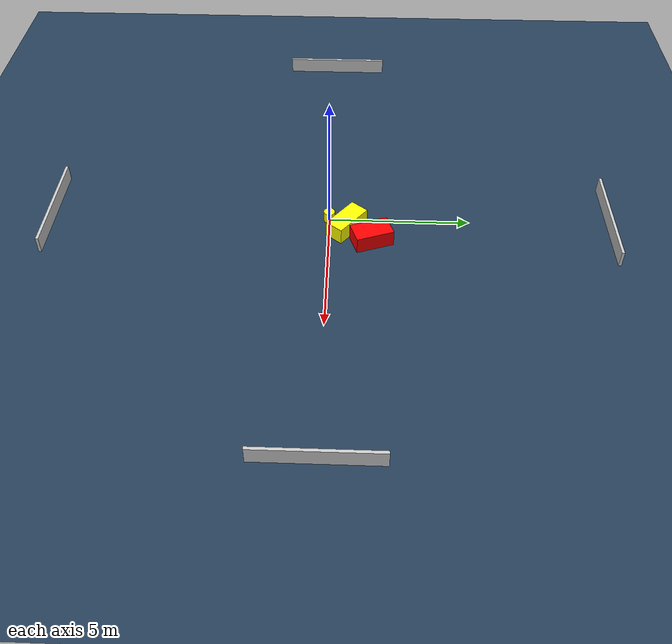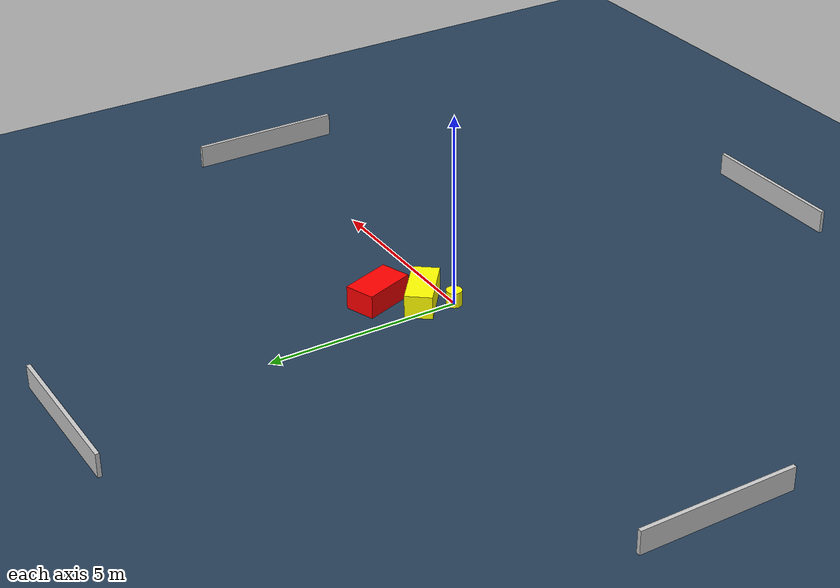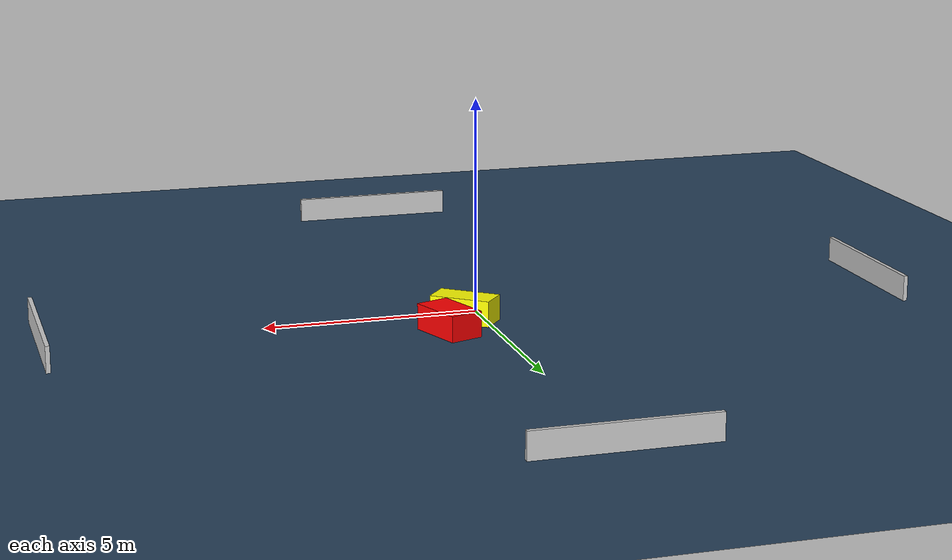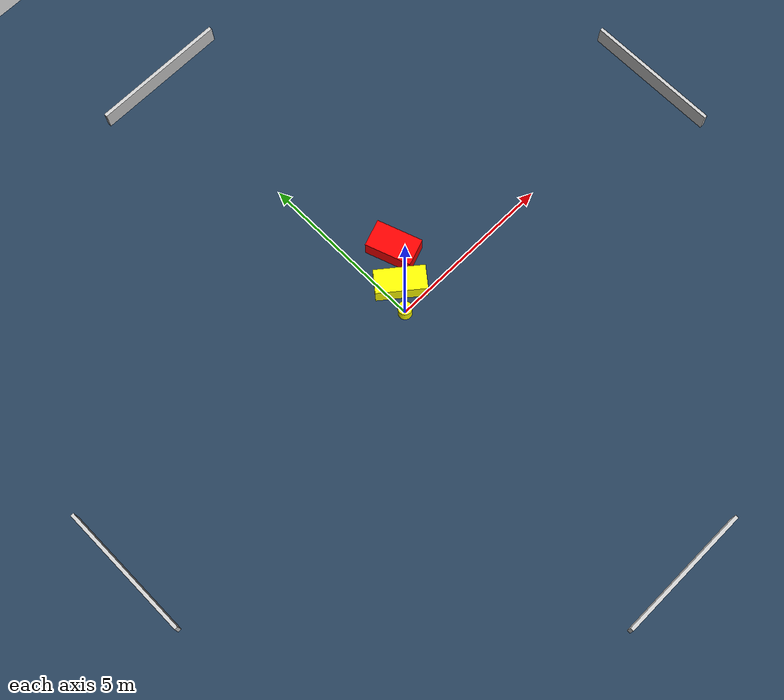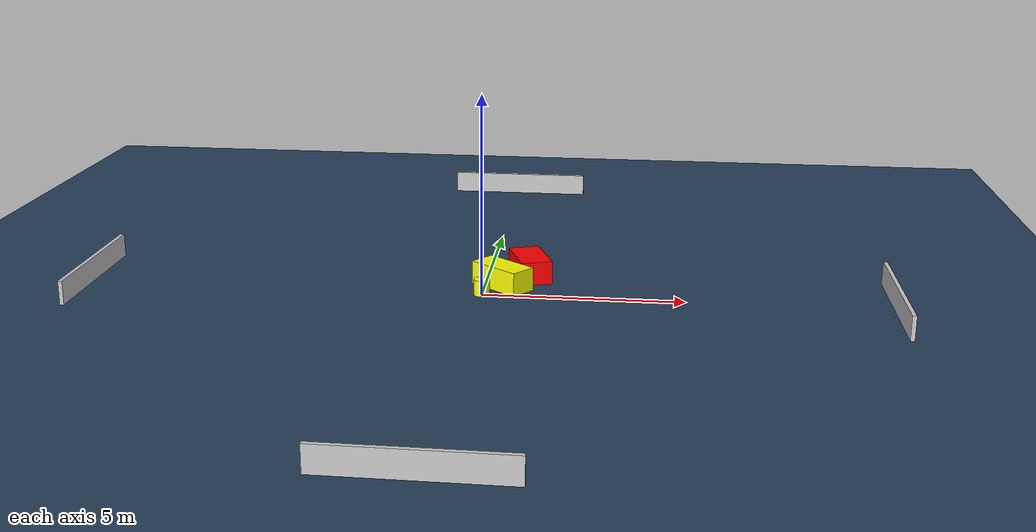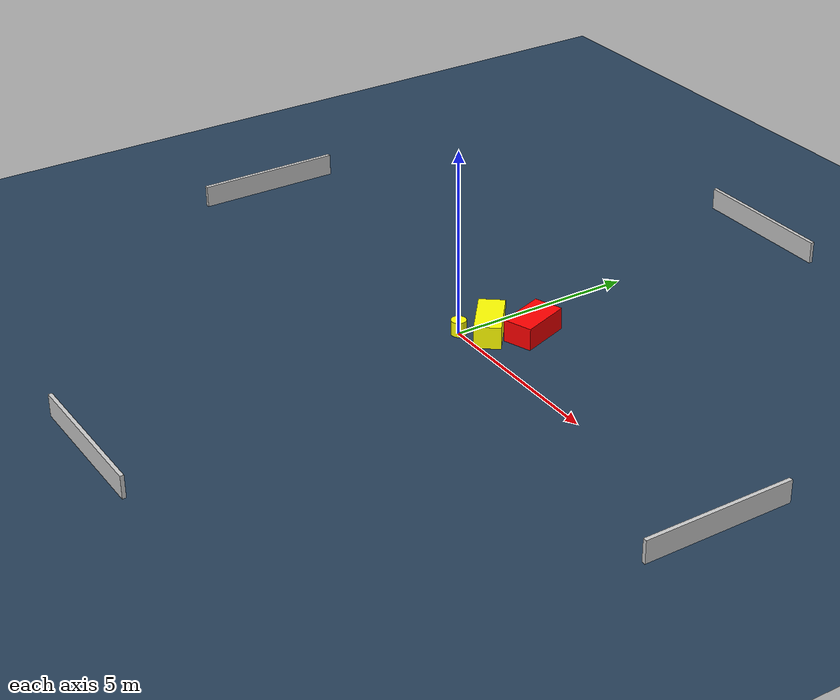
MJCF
<?xml version="1.0" ?>
<mujoco model="generated_environment">
  <option timestep="0.01" integrator="RK4" cone="elliptic"/>
  <default>
    <geom density="1"/>
  </default>
  <asset>
    <texture builtin="gradient" height="3072" name="skybox" rgb1="0.3 0.5 0.7" rgb2="0 0 0" type="skybox" width="512"/>
    <texture builtin="checker" height="300" name="groundplane" rgb1="0.2 0.3 0.4" rgb2="0.1 0.2 0.3" type="2d" width="300"/>
    <material name="groundplane" reflectance="0.2" texrepeat="5 5" texture="groundplane"/>
  </asset>
  <worldbody>
    <light dir="0 0 -1" directional="true" pos="0 0 1.5"/>
    <geom condim="3" friction="0.5 0.005 0.001" material="groundplane" name="floor" pos="0 0 0" size="0 0 0.05" type="plane"/>
    <body name="walls">
      <geom name="wall_1" condim="4" pos="-10.0 0.0 0.3" rgba="0.800000011920929 0.800000011920929 0.800000011920929 1.0" size="0.05 2.0 0.3" type="box"/>
      <geom name="wall_2" condim="4" pos="10.0 0.0 0.3" rgba="0.800000011920929 0.800000011920929 0.800000011920929 1.0" size="0.05 2.0 0.3" type="box"/>
      <geom name="wall_3" condim="4" pos="0.0 -10.0 0.3" rgba="0.800000011920929 0.800000011920929 0.800000011920929 1.0" size="2.0 0.05 0.3" type="box"/>
      <geom name="wall_4" condim="4" pos="0.0 10.0 0.3" rgba="0.800000011920929 0.800000011920929 0.800000011920929 1.0" size="2.0 0.05 0.3" type="box"/>
    </body>
    <body name="robot">
      <joint name="joint_x" type="slide" pos="0 0 0" axis="1 0 0"/>
      <joint name="joint_y" type="slide" pos="0 0 0" axis="0 1 0"/>
      <geom name="robot" type="cylinder" pos="0.0 0.0 0.2" size="0.2 0.2 0.0" mass="5.0" friction="1.0 0.005 0.0001" condim="4" rgba="1.0 1.0 0.0 1.0"/>
    </body>
    <body name="obstacle_1_movable">
      <geom name="obstacle_1_movable" condim="4" pos="0.4489387880939375 0.6301371574055195 0.3" euler="0 0 141.35069402098696" friction="0.0 0.005 0.001" rgba="1.0 1.0 0.0 1.0" size="0.7232716124792742 0.34529360637701534 0.3" type="box" mass="0.1"/>
      <joint type="free"/>
    </body>
    <body name="obstacle_2_static">
      <geom name="obstacle_2_static" condim="4" pos="1.0686811619649705 1.5160127863580153 0.3" euler="0 0 199.60943354880067" friction="0.0 0.005 0.001" rgba="1.0 0.0 0.0 1.0" size="0.3984223434995704 0.6796433807429498 0.3" type="box"/>
    </body>
  </worldbody>
  <actuator>
    <motor name="actuator_x" joint="joint_x" gear="1" ctrlrange="-1 1"/>
    <motor name="actuator_y" joint="joint_y" gear="1" ctrlrange="-1 1"/>
  </actuator>
</mujoco>
